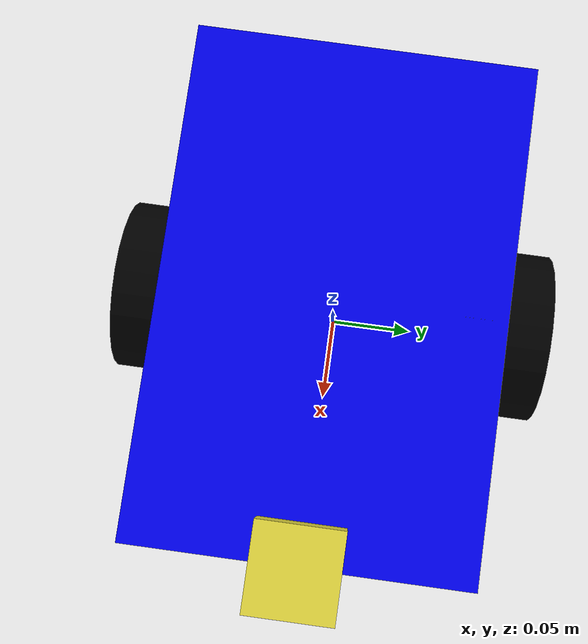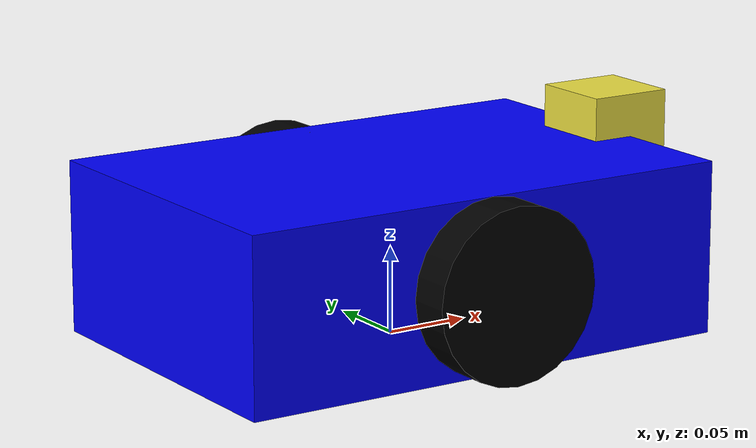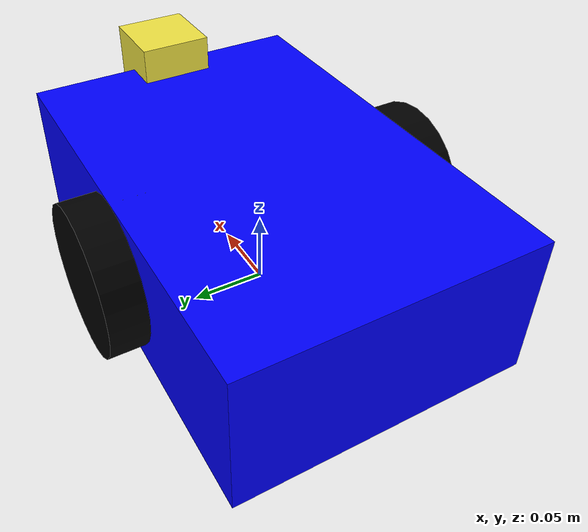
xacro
<?xml version="1.0"?>
<robot name="lane_robot" xmlns:xacro="http://ros.org/wiki/xacro">
  <material name="blue">
    <color rgba="0 0 1 1"/>
  </material>
  <material name="black">
    <color rgba="0 0 0 1"/>
  </material>

  <link name="base_link">
    <visual>
      <geometry>
        <box size="0.3 0.2 0.1"/>
      </geometry>
      <origin xyz="0 0 0.05"/>
      <material name="blue"/>
    </visual>
    <collision>
      <geometry>
        <box size="0.3 0.2 0.1"/>
      </geometry>
      <origin xyz="0 0 0.05"/>
    </collision>
    <inertial>
      <mass value="1.0"/>
      <inertia ixx="0.01" ixy="0.0" ixz="0.0"
               iyy="0.01" iyz="0.0"
               izz="0.02"/>
    </inertial>
  </link>

  <!-- Wheels -->
  <link name="left_wheel">
    <visual>
      <geometry>
        <cylinder length="0.05" radius="0.05"/>  <!-- 5cm radius, 5cm thick -->
      </geometry>
      <origin rpy="1.5707 0 0" xyz="0 0 0"/>
      <material name="black"/>
    </visual>
    <collision>
      <geometry>
        <cylinder length="0.05" radius="0.05"/>
      </geometry>
       <origin rpy="1.5707 0 0" xyz="0 0 0"/>
    </collision>
    <inertial>
      <mass value="0.2"/>
      <inertia ixx="0.001" iyy="0.001" izz="0.001"
               ixy="0.0" ixz="0.0" iyz="0.0"/>
    </inertial>
  </link>

  <link name="right_wheel">
    <visual>
      <geometry>
        <cylinder length="0.05" radius="0.05"/>
      </geometry>
      <origin rpy="1.5707 0 0" xyz="0 0 0"/>
      <material name="black"/>
    </visual>
    <collision>
      <geometry>
        <cylinder length="0.05" radius="0.05"/>
      </geometry>
       <origin rpy="1.5707 0 0" xyz="0 0 0"/>
    </collision>
    <inertial>
      <mass value="0.2"/>
      <inertia ixx="0.001" iyy="0.001" izz="0.001"
               ixy="0.0" ixz="0.0" iyz="0.0"/>
    </inertial>
  </link>

  <!-- Joint: left wheel to base -->
  <joint name="left_wheel_joint" type="continuous">
    <parent link="base_link"/>
    <child link="left_wheel"/>
    <origin xyz="0 0.1 0.05" rpy="0 0 0"/>
    <axis xyz="0 1 0"/>
  </joint>

  <!-- Joint: right wheel to base -->
  <joint name="right_wheel_joint" type="continuous">
    <parent link="base_link"/>
    <child link="right_wheel"/>
    <origin xyz="0 -0.1 0.05" rpy="0 0 0"/>
    <axis xyz="0 1 0"/>
  </joint>

  <!-- Differential Drive Plugin -->

  <!-- Camera sensor -->
  <link name="camera_link">
    <visual>
      <geometry>
        <box size="0.05 0.05 0.05"/>
      </geometry>
      <origin xyz="0 0 0"/>
    </visual>
  </link>

  <joint name="camera_joint" type="fixed">
    <parent link="base_link"/>
    <child link="camera_link"/>
    <origin xyz="0.15 0 0.1" rpy="0 0 0"/>
  </joint>

  <gazebo reference="camera_link">
    <sensor type="camera" name="camera">
      <always_on>true</always_on>
      <update_rate>30</update_rate>
      <camera>
        <horizontal_fov>1.0</horizontal_fov>
        <image>
          <width>640</width>
          <height>480</height>
          <format>R8G8B8</format>
        </image>
      </camera>
      <plugin name="camera_controller" filename="libgazebo_ros_camera.so">
        <ros>
          <remapping>image_raw:=/camera/image_raw</remapping>
        </ros>
      </plugin>
    </sensor>
  </gazebo>

</robot>
